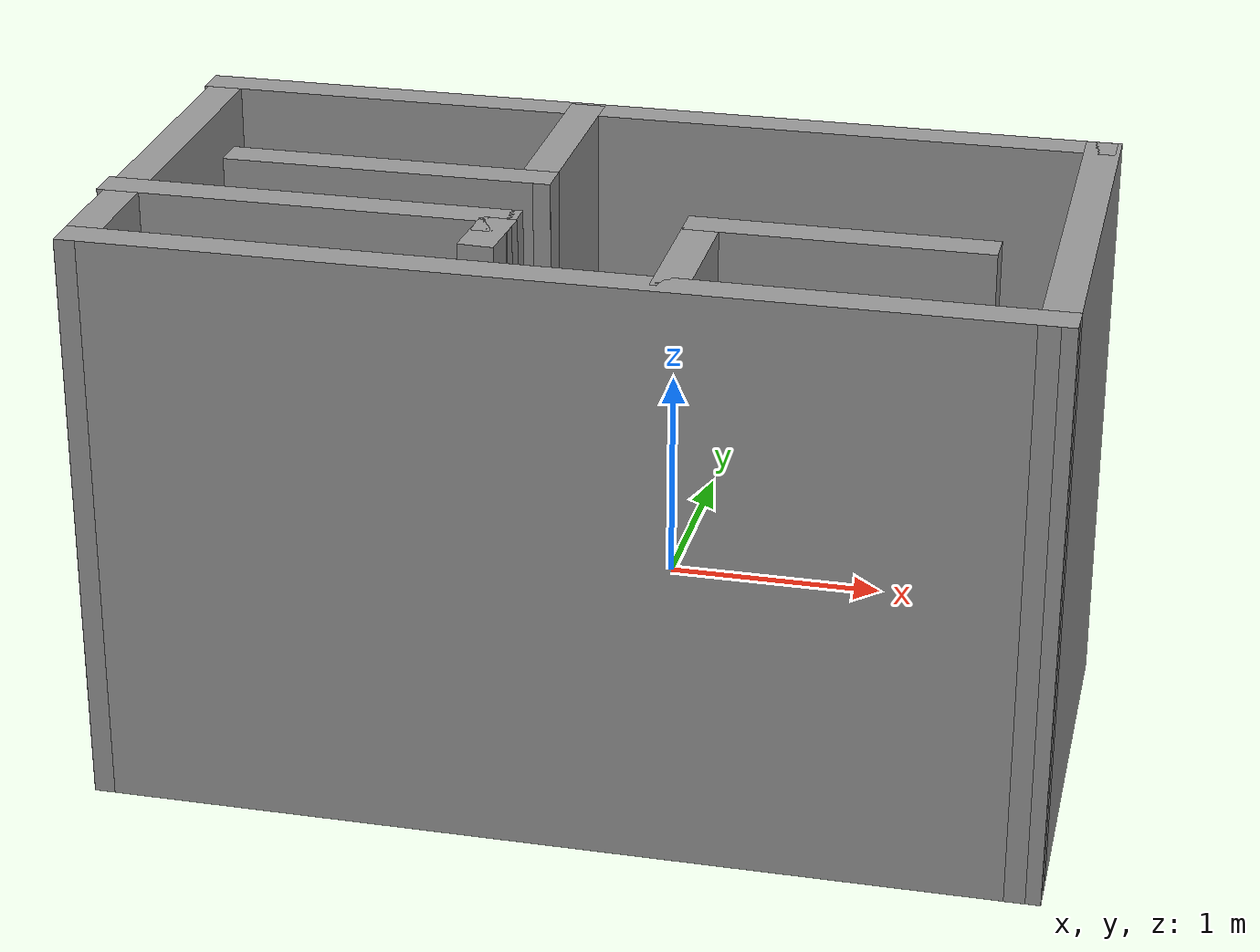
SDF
<?xml version='1.0'?>
<sdf version='1.7'>
  <model name='room'>
    <pose>0.025778 -1.27551 0 0 -0 0</pose>
    <link name='Wall_10'>
      <collision name='Wall_10_Collision'>
        <geometry>
          <box>
            <size>1.40301 0.15 2.5</size>
          </box>
        </geometry>
        <pose>0 0 1.25 0 -0 0</pose>
      </collision>
      <visual name='Wall_10_Visual'>
        <pose>0 0 1.25 0 -0 0</pose>
        <geometry>
          <box>
            <size>1.40301 0.15 2.5</size>
          </box>
        </geometry>
        <material>
          <script>
            <uri>file://media/materials/scripts/gazebo.material</uri>
            <name>Gazebo/Grey</name>
          </script>
          <ambient>1 1 1 1</ambient>
        </material>
        <meta>
          <layer>0</layer>
        </meta>
      </visual>
      <pose>-0.934039 -0.174706 0 0 -0 -3.13986</pose>
    </link>
    <link name='Wall_12'>
      <collision name='Wall_12_Collision'>
        <geometry>
          <box>
            <size>1.75 0.15 2.5</size>
          </box>
        </geometry>
        <pose>0 0 1.25 0 -0 0</pose>
      </collision>
      <visual name='Wall_12_Visual'>
        <pose>0 0 1.25 0 -0 0</pose>
        <geometry>
          <box>
            <size>1.75 0.15 2.5</size>
          </box>
        </geometry>
        <material>
          <script>
            <uri>file://media/materials/scripts/gazebo.material</uri>
            <name>Gazebo/Grey</name>
          </script>
          <ambient>1 1 1 1</ambient>
        </material>
        <meta>
          <layer>0</layer>
        </meta>
      </visual>
      <pose>-1.14274 -0.636662 0 0 -0 0</pose>
    </link>
    <link name='Wall_13'>
      <collision name='Wall_13_Collision'>
        <geometry>
          <box>
            <size>0.25 0.15 2.5</size>
          </box>
        </geometry>
        <pose>0 0 1.25 0 -0 0</pose>
      </collision>
      <visual name='Wall_13_Visual'>
        <pose>0 0 1.25 0 -0 0</pose>
        <geometry>
          <box>
            <size>0.25 0.15 2.5</size>
          </box>
        </geometry>
        <material>
          <script>
            <uri>file://media/materials/scripts/gazebo.material</uri>
            <name>Gazebo/Grey</name>
          </script>
          <ambient>1 1 1 1</ambient>
        </material>
        <meta>
          <layer>0</layer>
        </meta>
      </visual>
      <pose>-0.342735 -0.686662 0 0 -0 -1.5708</pose>
    </link>
    <link name='Wall_14'>
      <collision name='Wall_14_Collision'>
        <geometry>
          <box>
            <size>0.31087 0.15 2.5</size>
          </box>
        </geometry>
        <pose>0 0 1.25 0 -0 0</pose>
      </collision>
      <visual name='Wall_14_Visual'>
        <pose>0 0 1.25 0 -0 0</pose>
        <geometry>
          <box>
            <size>0.31087 0.15 2.5</size>
          </box>
        </geometry>
        <material>
          <script>
            <uri>file://media/materials/scripts/gazebo.material</uri>
            <name>Gazebo/Grey</name>
          </script>
          <ambient>1 1 1 1</ambient>
        </material>
        <meta>
          <layer>0</layer>
        </meta>
      </visual>
      <pose>-0.347083 -0.817097 0 0 -0 -1.6248</pose>
    </link>
    <link name='Wall_16'>
      <collision name='Wall_16_Collision'>
        <geometry>
          <box>
            <size>0.75 0.15 2.5</size>
          </box>
        </geometry>
        <pose>0 0 1.25 0 -0 0</pose>
      </collision>
      <visual name='Wall_16_Visual'>
        <pose>0 0 1.25 0 -0 0</pose>
        <geometry>
          <box>
            <size>0.75 0.15 2.5</size>
          </box>
        </geometry>
        <material>
          <script>
            <uri>file://media/materials/scripts/gazebo.material</uri>
            <name>Gazebo/Grey</name>
          </script>
          <ambient>1 1 1 1</ambient>
        </material>
        <meta>
          <layer>0</layer>
        </meta>
      </visual>
      <pose>0.465961 -0.84101 0 0 -0 1.5708</pose>
    </link>
    <link name='Wall_17'>
      <collision name='Wall_17_Collision'>
        <geometry>
          <box>
            <size>1.25 0.15 2.5</size>
          </box>
        </geometry>
        <pose>0 0 1.25 0 -0 0</pose>
      </collision>
      <visual name='Wall_17_Visual'>
        <pose>0 0 1.25 0 -0 0</pose>
        <geometry>
          <box>
            <size>1.25 0.15 2.5</size>
          </box>
        </geometry>
        <material>
          <script>
            <uri>file://media/materials/scripts/gazebo.material</uri>
            <name>Gazebo/Grey</name>
          </script>
          <ambient>1 1 1 1</ambient>
        </material>
        <meta>
          <layer>0</layer>
        </meta>
      </visual>
      <pose>1.01596 -0.54101 0 0 -0 0</pose>
    </link>
    <link name='Wall_3'>
      <collision name='Wall_3_Collision'>
        <geometry>
          <box>
            <size>4 0.15 2.5</size>
          </box>
        </geometry>
        <pose>0 0 1.25 0 -0 0</pose>
      </collision>
      <visual name='Wall_3_Visual'>
        <pose>0 0 1.25 0 -0 0</pose>
        <geometry>
          <box>
            <size>4 0.15 2.5</size>
          </box>
        </geometry>
        <material>
          <script>
            <uri>file://media/materials/scripts/gazebo.material</uri>
            <name>Gazebo/Grey</name>
          </script>
          <ambient>1 1 1 1</ambient>
        </material>
        <meta>
          <layer>0</layer>
        </meta>
      </visual>
      <pose>-0.017735 0.693772 0 0 -0 0</pose>
    </link>
    <link name='Wall_4'>
      <collision name='Wall_4_Collision'>
        <geometry>
          <box>
            <size>2.0438 0.15 2.5</size>
          </box>
        </geometry>
        <pose>0 0 1.25 0 -0 0</pose>
      </collision>
      <visual name='Wall_4_Visual'>
        <pose>0 0 1.25 0 -0 0</pose>
        <geometry>
          <box>
            <size>2.0438 0.15 2.5</size>
          </box>
        </geometry>
        <material>
          <script>
            <uri>file://media/materials/scripts/gazebo.material</uri>
            <name>Gazebo/Grey</name>
          </script>
          <ambient>1 1 1 1</ambient>
        </material>
        <meta>
          <layer>0</layer>
        </meta>
      </visual>
      <pose>1.93335 -0.252967 0 0 -0 -1.56161</pose>
    </link>
    <link name='Wall_5'>
      <collision name='Wall_5_Collision'>
        <geometry>
          <box>
            <size>4 0.15 2.5</size>
          </box>
        </geometry>
        <pose>0 0 1.25 0 -0 0</pose>
      </collision>
      <visual name='Wall_5_Visual'>
        <pose>0 0 1.25 0 -0 0</pose>
        <geometry>
          <box>
            <size>4 0.15 2.5</size>
          </box>
        </geometry>
        <material>
          <script>
            <uri>file://media/materials/scripts/gazebo.material</uri>
            <name>Gazebo/Grey</name>
          </script>
          <ambient>1 1 1 1</ambient>
        </material>
        <meta>
          <layer>0</layer>
        </meta>
      </visual>
      <pose>0.017048 -1.19971 0 0 -0 3.14159</pose>
    </link>
    <link name='Wall_6'>
      <collision name='Wall_6_Collision'>
        <geometry>
          <box>
            <size>2.0438 0.15 2.5</size>
          </box>
        </geometry>
        <pose>0 0 1.25 0 -0 0</pose>
      </collision>
      <visual name='Wall_6_Visual'>
        <pose>0 0 1.25 0 -0 0</pose>
        <geometry>
          <box>
            <size>2.0438 0.15 2.5</size>
          </box>
        </geometry>
        <material>
          <script>
            <uri>file://media/materials/scripts/gazebo.material</uri>
            <name>Gazebo/Grey</name>
          </script>
          <ambient>1 1 1 1</ambient>
        </material>
        <meta>
          <layer>0</layer>
        </meta>
      </visual>
      <pose>-1.91665 -0.252967 0 0 -0 1.57998</pose>
    </link>
    <link name='Wall_9'>
      <collision name='Wall_9_Collision'>
        <geometry>
          <box>
            <size>1 0.15 2.5</size>
          </box>
        </geometry>
        <pose>0 0 1.25 0 -0 0</pose>
      </collision>
      <visual name='Wall_9_Visual'>
        <pose>0 0 1.25 0 -0 0</pose>
        <geometry>
          <box>
            <size>1 0.15 2.5</size>
          </box>
        </geometry>
        <material>
          <script>
            <uri>file://media/materials/scripts/gazebo.material</uri>
            <name>Gazebo/Grey</name>
          </script>
          <ambient>1 1 1 1</ambient>
        </material>
        <meta>
          <layer>0</layer>
        </meta>
      </visual>
      <pose>-0.307952 0.251381 0 0 -0 -1.5708</pose>
    </link>
    <static>1</static>
  </model>
</sdf>
